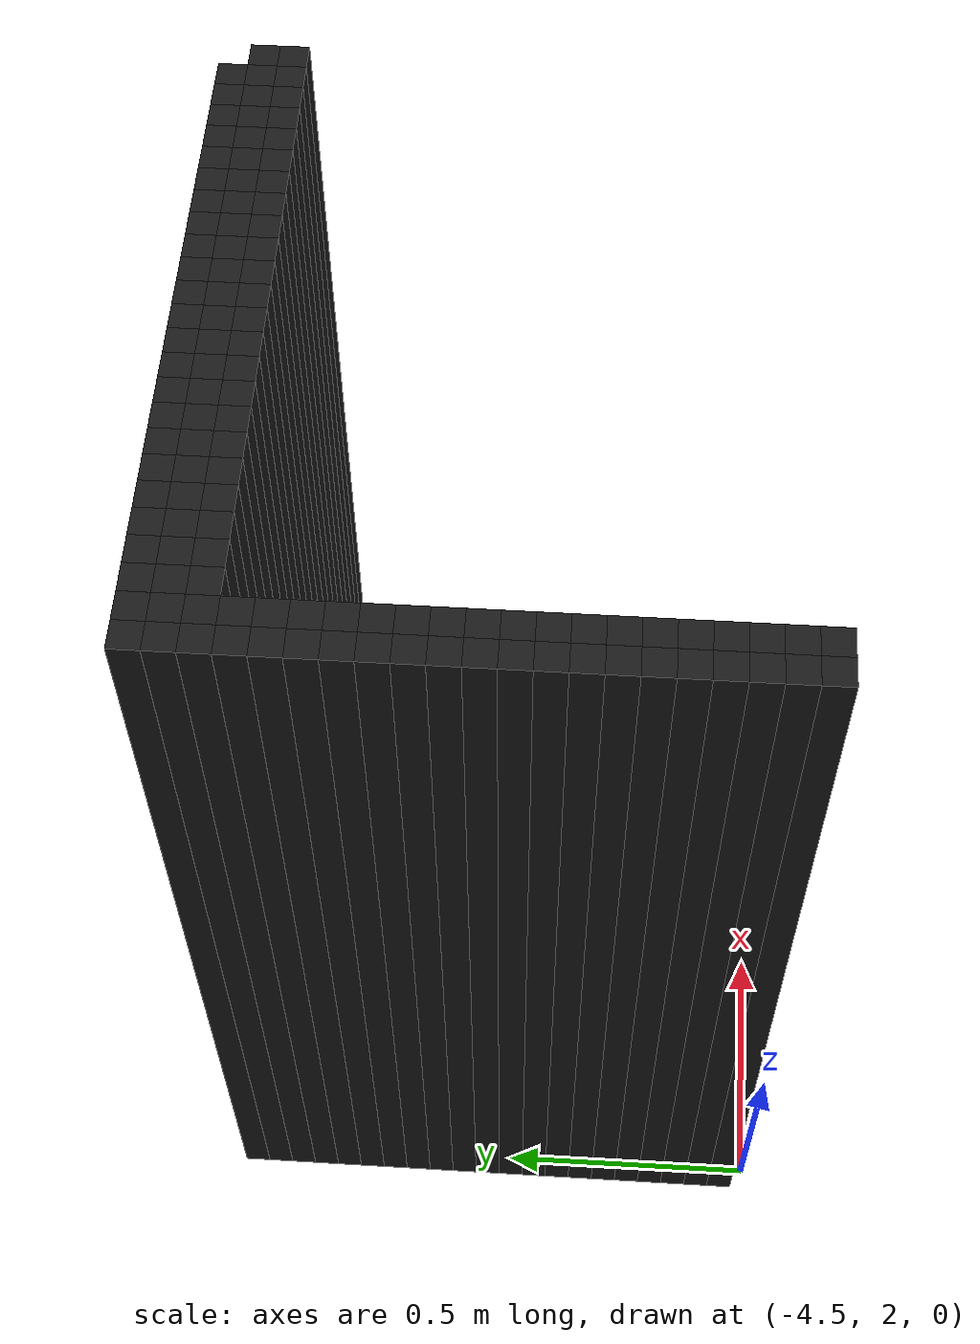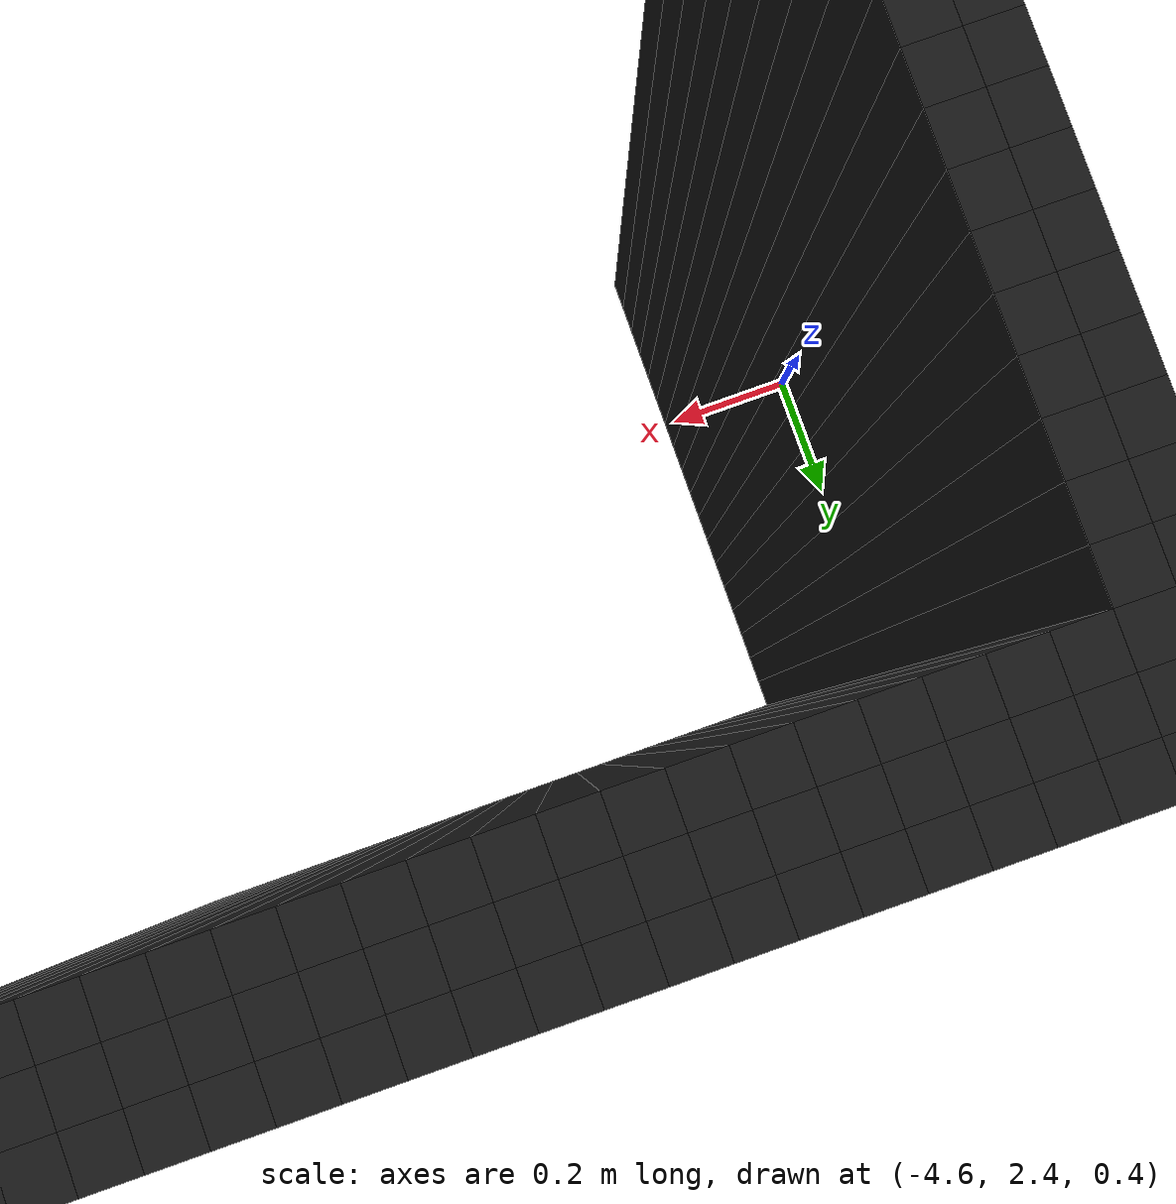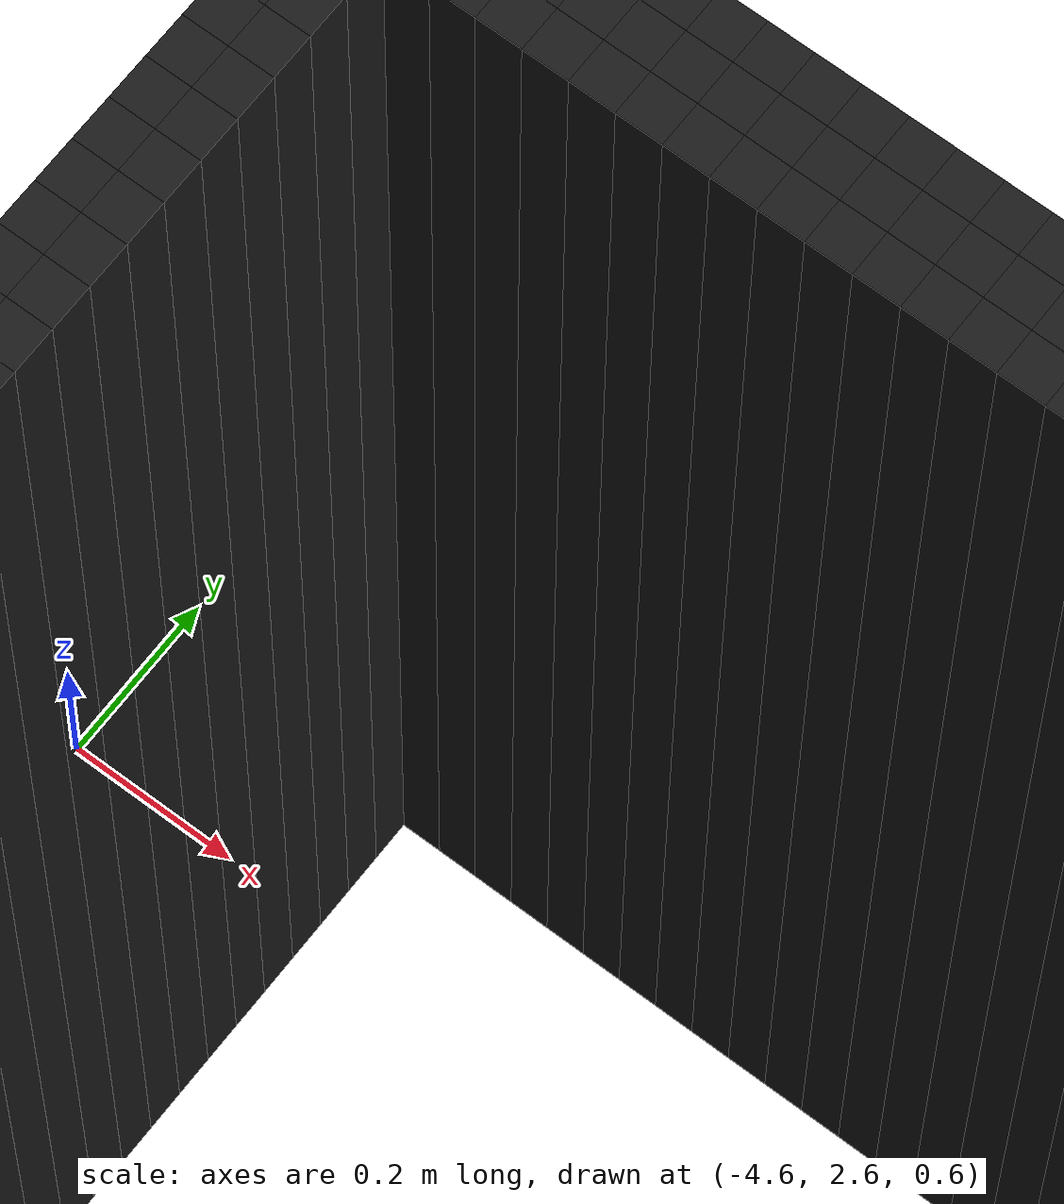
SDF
<sdf version="1.6">
 <model name="obstacle_0_106">
  <pose>-4.51 3.05 1.0 0 0 0</pose>
  <static>true</static>
  <link name="box_link">
   <collision name="box_collision"><geometry><box><size>0.05 0.05 2.0</size></box></geometry></collision>
   <visual name="box_visual">
    <geometry><box><size>0.05 0.05 2.0</size></box></geometry>
    <material><ambient>0 0 0 1</ambient><diffuse>0.1 0.1 0.1 1</diffuse></material>
   </visual>
  </link>
 </model>
 <model name="obstacle_1_106">
  <pose>-4.46 3.05 1.0 0 0 0</pose>
  <static>true</static>
  <link name="box_link">
   <collision name="box_collision"><geometry><box><size>0.05 0.05 2.0</size></box></geometry></collision>
   <visual name="box_visual">
    <geometry><box><size>0.05 0.05 2.0</size></box></geometry>
    <material><ambient>0 0 0 1</ambient><diffuse>0.1 0.1 0.1 1</diffuse></material>
   </visual>
  </link>
 </model>
 <model name="obstacle_2_106">
  <pose>-4.41 3.05 1.0 0 0 0</pose>
  <static>true</static>
  <link name="box_link">
   <collision name="box_collision"><geometry><box><size>0.05 0.05 2.0</size></box></geometry></collision>
   <visual name="box_visual">
    <geometry><box><size>0.05 0.05 2.0</size></box></geometry>
    <material><ambient>0 0 0 1</ambient><diffuse>0.1 0.1 0.1 1</diffuse></material>
   </visual>
  </link>
 </model>
 <model name="obstacle_3_106">
  <pose>-4.359999999999999 3.05 1.0 0 0 0</pose>
  <static>true</static>
  <link name="box_link">
   <collision name="box_collision"><geometry><box><size>0.05 0.05 2.0</size></box></geometry></collision>
   <visual name="box_visual">
    <geometry><box><size>0.05 0.05 2.0</size></box></geometry>
    <material><ambient>0 0 0 1</ambient><diffuse>0.1 0.1 0.1 1</diffuse></material>
   </visual>
  </link>
 </model>
 <model name="obstacle_4_106">
  <pose>-4.31 3.05 1.0 0 0 0</pose>
  <static>true</static>
  <link name="box_link">
   <collision name="box_collision"><geometry><box><size>0.05 0.05 2.0</size></box></geometry></collision>
   <visual name="box_visual">
    <geometry><box><size>0.05 0.05 2.0</size></box></geometry>
    <material><ambient>0 0 0 1</ambient><diffuse>0.1 0.1 0.1 1</diffuse></material>
   </visual>
  </link>
 </model>
 <model name="obstacle_5_106">
  <pose>-4.26 3.05 1.0 0 0 0</pose>
  <static>true</static>
  <link name="box_link">
   <collision name="box_collision"><geometry><box><size>0.05 0.05 2.0</size></box></geometry></collision>
   <visual name="box_visual">
    <geometry><box><size>0.05 0.05 2.0</size></box></geometry>
    <material><ambient>0 0 0 1</ambient><diffuse>0.1 0.1 0.1 1</diffuse></material>
   </visual>
  </link>
 </model>
 <model name="obstacle_6_106">
  <pose>-4.21 3.05 1.0 0 0 0</pose>
  <static>true</static>
  <link name="box_link">
   <collision name="box_collision"><geometry><box><size>0.05 0.05 2.0</size></box></geometry></collision>
   <visual name="box_visual">
    <geometry><box><size>0.05 0.05 2.0</size></box></geometry>
    <material><ambient>0 0 0 1</ambient><diffuse>0.1 0.1 0.1 1</diffuse></material>
   </visual>
  </link>
 </model>
 <model name="obstacle_7_106">
  <pose>-4.16 3.05 1.0 0 0 0</pose>
  <static>true</static>
  <link name="box_link">
   <collision name="box_collision"><geometry><box><size>0.05 0.05 2.0</size></box></geometry></collision>
   <visual name="box_visual">
    <geometry><box><size>0.05 0.05 2.0</size></box></geometry>
    <material><ambient>0 0 0 1</ambient><diffuse>0.1 0.1 0.1 1</diffuse></material>
   </visual>
  </link>
 </model>
 <model name="obstacle_8_106">
  <pose>-4.109999999999999 3.05 1.0 0 0 0</pose>
  <static>true</static>
  <link name="box_link">
   <collision name="box_collision"><geometry><box><size>0.05 0.05 2.0</size></box></geometry></collision>
   <visual name="box_visual">
    <geometry><box><size>0.05 0.05 2.0</size></box></geometry>
    <material><ambient>0 0 0 1</ambient><diffuse>0.1 0.1 0.1 1</diffuse></material>
   </visual>
  </link>
 </model>
 <model name="obstacle_9_106">
  <pose>-4.06 3.05 1.0 0 0 0</pose>
  <static>true</static>
  <link name="box_link">
   <collision name="box_collision"><geometry><box><size>0.05 0.05 2.0</size></box></geometry></collision>
   <visual name="box_visual">
    <geometry><box><size>0.05 0.05 2.0</size></box></geometry>
    <material><ambient>0 0 0 1</ambient><diffuse>0.1 0.1 0.1 1</diffuse></material>
   </visual>
  </link>
 </model>
 <model name="obstacle_10_106">
  <pose>-4.01 3.05 1.0 0 0 0</pose>
  <static>true</static>
  <link name="box_link">
   <collision name="box_collision"><geometry><box><size>0.05 0.05 2.0</size></box></geometry></collision>
   <visual name="box_visual">
    <geometry><box><size>0.05 0.05 2.0</size></box></geometry>
    <material><ambient>0 0 0 1</ambient><diffuse>0.1 0.1 0.1 1</diffuse></material>
   </visual>
  </link>
 </model>
 <model name="obstacle_11_106">
  <pose>-3.96 3.05 1.0 0 0 0</pose>
  <static>true</static>
  <link name="box_link">
   <collision name="box_collision"><geometry><box><size>0.05 0.05 2.0</size></box></geometry></collision>
   <visual name="box_visual">
    <geometry><box><size>0.05 0.05 2.0</size></box></geometry>
    <material><ambient>0 0 0 1</ambient><diffuse>0.1 0.1 0.1 1</diffuse></material>
   </visual>
  </link>
 </model>
 <model name="obstacle_12_106">
  <pose>-3.9099999999999997 3.05 1.0 0 0 0</pose>
  <static>true</static>
  <link name="box_link">
   <collision name="box_collision"><geometry><box><size>0.05 0.05 2.0</size></box></geometry></collision>
   <visual name="box_visual">
    <geometry><box><size>0.05 0.05 2.0</size></box></geometry>
    <material><ambient>0 0 0 1</ambient><diffuse>0.1 0.1 0.1 1</diffuse></material>
   </visual>
  </link>
 </model>
 <model name="obstacle_13_106">
  <pose>-3.86 3.05 1.0 0 0 0</pose>
  <static>true</static>
  <link name="box_link">
   <collision name="box_collision"><geometry><box><size>0.05 0.05 2.0</size></box></geometry></collision>
   <visual name="box_visual">
    <geometry><box><size>0.05 0.05 2.0</size></box></geometry>
    <material><ambient>0 0 0 1</ambient><diffuse>0.1 0.1 0.1 1</diffuse></material>
   </visual>
  </link>
 </model>
 <model name="obstacle_14_106">
  <pose>-3.8099999999999996 3.05 1.0 0 0 0</pose>
  <static>true</static>
  <link name="box_link">
   <collision name="box_collision"><geometry><box><size>0.05 0.05 2.0</size></box></geometry></collision>
   <visual name="box_visual">
    <geometry><box><size>0.05 0.05 2.0</size></box></geometry>
    <material><ambient>0 0 0 1</ambient><diffuse>0.1 0.1 0.1 1</diffuse></material>
   </visual>
  </link>
 </model>
 <model name="obstacle_15_106">
  <pose>-3.76 3.05 1.0 0 0 0</pose>
  <static>true</static>
  <link name="box_link">
   <collision name="box_collision"><geometry><box><size>0.05 0.05 2.0</size></box></geometry></collision>
   <visual name="box_visual">
    <geometry><box><size>0.05 0.05 2.0</size></box></geometry>
    <material><ambient>0 0 0 1</ambient><diffuse>0.1 0.1 0.1 1</diffuse></material>
   </visual>
  </link>
 </model>
 <model name="obstacle_16_106">
  <pose>-3.71 3.05 1.0 0 0 0</pose>
  <static>true</static>
  <link name="box_link">
   <collision name="box_collision"><geometry><box><size>0.05 0.05 2.0</size></box></geometry></collision>
   <visual name="box_visual">
    <geometry><box><size>0.05 0.05 2.0</size></box></geometry>
    <material><ambient>0 0 0 1</ambient><diffuse>0.1 0.1 0.1 1</diffuse></material>
   </visual>
  </link>
 </model>
 <model name="obstacle_17_106">
  <pose>-3.6599999999999997 3.05 1.0 0 0 0</pose>
  <static>true</static>
  <link name="box_link">
   <collision name="box_collision"><geometry><box><size>0.05 0.05 2.0</size></box></geometry></collision>
   <visual name="box_visual">
    <geometry><box><size>0.05 0.05 2.0</size></box></geometry>
    <material><ambient>0 0 0 1</ambient><diffuse>0.1 0.1 0.1 1</diffuse></material>
   </visual>
  </link>
 </model>
 <model name="obstacle_18_106">
  <pose>-3.61 3.05 1.0 0 0 0</pose>
  <static>true</static>
  <link name="box_link">
   <collision name="box_collision"><geometry><box><size>0.05 0.05 2.0</size></box></geometry></collision>
   <visual name="box_visual">
    <geometry><box><size>0.05 0.05 2.0</size></box></geometry>
    <material><ambient>0 0 0 1</ambient><diffuse>0.1 0.1 0.1 1</diffuse></material>
   </visual>
  </link>
 </model>
 <model name="obstacle_19_106">
  <pose>-3.5599999999999996 3.05 1.0 0 0 0</pose>
  <static>true</static>
  <link name="box_link">
   <collision name="box_collision"><geometry><box><size>0.05 0.05 2.0</size></box></geometry></collision>
   <visual name="box_visual">
    <geometry><box><size>0.05 0.05 2.0</size></box></geometry>
    <material><ambient>0 0 0 1</ambient><diffuse>0.1 0.1 0.1 1</diffuse></material>
   </visual>
  </link>
 </model>
 <model name="obstacle_20_106">
  <pose>-3.51 3.05 1.0 0 0 0</pose>
  <static>true</static>
  <link name="box_link">
   <collision name="box_collision"><geometry><box><size>0.05 0.05 2.0</size></box></geometry></collision>
   <visual name="box_visual">
    <geometry><box><size>0.05 0.05 2.0</size></box></geometry>
    <material><ambient>0 0 0 1</ambient><diffuse>0.1 0.1 0.1 1</diffuse></material>
   </visual>
  </link>
 </model>
 <model name="obstacle_21_106">
  <pose>-3.46 3.05 1.0 0 0 0</pose>
  <static>true</static>
  <link name="box_link">
   <collision name="box_collision"><geometry><box><size>0.05 0.05 2.0</size></box></geometry></collision>
   <visual name="box_visual">
    <geometry><box><size>0.05 0.05 2.0</size></box></geometry>
    <material><ambient>0 0 0 1</ambient><diffuse>0.1 0.1 0.1 1</diffuse></material>
   </visual>
  </link>
 </model>
 <model name="obstacle_22_106">
  <pose>-3.4099999999999997 3.05 1.0 0 0 0</pose>
  <static>true</static>
  <link name="box_link">
   <collision name="box_collision"><geometry><box><size>0.05 0.05 2.0</size></box></geometry></collision>
   <visual name="box_visual">
    <geometry><box><size>0.05 0.05 2.0</size></box></geometry>
    <material><ambient>0 0 0 1</ambient><diffuse>0.1 0.1 0.1 1</diffuse></material>
   </visual>
  </link>
 </model>
 <model name="obstacle_23_106">
  <pose>-3.3599999999999994 3.05 1.0 0 0 0</pose>
  <static>true</static>
  <link name="box_link">
   <collision name="box_collision"><geometry><box><size>0.05 0.05 2.0</size></box></geometry></collision>
   <visual name="box_visual">
    <geometry><box><size>0.05 0.05 2.0</size></box></geometry>
    <material><ambient>0 0 0 1</ambient><diffuse>0.1 0.1 0.1 1</diffuse></material>
   </visual>
  </link>
 </model>
 <model name="obstacle_0_107">
  <pose>-4.51 3.0 1.0 0 0 0</pose>
  <static>true</static>
  <link name="box_link">
   <collision name="box_collision"><geometry><box><size>0.05 0.05 2.0</size></box></geometry></collision>
   <visual name="box_visual">
    <geometry><box><size>0.05 0.05 2.0</size></box></geometry>
    <material><ambient>0 0 0 1</ambient><diffuse>0.1 0.1 0.1 1</diffuse></material>
   </visual>
  </link>
 </model>
 <model name="obstacle_1_107">
  <pose>-4.46 3.0 1.0 0 0 0</pose>
  <static>true</static>
  <link name="box_link">
   <collision name="box_collision"><geometry><box><size>0.05 0.05 2.0</size></box></geometry></collision>
   <visual name="box_visual">
    <geometry><box><size>0.05 0.05 2.0</size></box></geometry>
    <material><ambient>0 0 0 1</ambient><diffuse>0.1 0.1 0.1 1</diffuse></material>
   </visual>
  </link>
 </model>
 <model name="obstacle_2_107">
  <pose>-4.41 3.0 1.0 0 0 0</pose>
  <static>true</static>
  <link name="box_link">
   <collision name="box_collision"><geometry><box><size>0.05 0.05 2.0</size></box></geometry></collision>
   <visual name="box_visual">
    <geometry><box><size>0.05 0.05 2.0</size></box></geometry>
    <material><ambient>0 0 0 1</ambient><diffuse>0.1 0.1 0.1 1</diffuse></material>
   </visual>
  </link>
 </model>
 <model name="obstacle_3_107">
  <pose>-4.359999999999999 3.0 1.0 0 0 0</pose>
  <static>true</static>
  <link name="box_link">
   <collision name="box_collision"><geometry><box><size>0.05 0.05 2.0</size></box></geometry></collision>
   <visual name="box_visual">
    <geometry><box><size>0.05 0.05 2.0</size></box></geometry>
    <material><ambient>0 0 0 1</ambient><diffuse>0.1 0.1 0.1 1</diffuse></material>
   </visual>
  </link>
 </model>
 <model name="obstacle_4_107">
  <pose>-4.31 3.0 1.0 0 0 0</pose>
  <static>true</static>
  <link name="box_link">
   <collision name="box_collision"><geometry><box><size>0.05 0.05 2.0</size></box></geometry></collision>
   <visual name="box_visual">
    <geometry><box><size>0.05 0.05 2.0</size></box></geometry>
    <material><ambient>0 0 0 1</ambient><diffuse>0.1 0.1 0.1 1</diffuse></material>
   </visual>
  </link>
 </model>
 <model name="obstacle_5_107">
  <pose>-4.26 3.0 1.0 0 0 0</pose>
  <static>true</static>
  <link name="box_link">
   <collision name="box_collision"><geometry><box><size>0.05 0.05 2.0</size></box></geometry></collision>
   <visual name="box_visual">
    <geometry><box><size>0.05 0.05 2.0</size></box></geometry>
    <material><ambient>0 0 0 1</ambient><diffuse>0.1 0.1 0.1 1</diffuse></material>
   </visual>
  </link>
 </model>
 <model name="obstacle_6_107">
  <pose>-4.21 3.0 1.0 0 0 0</pose>
  <static>true</static>
  <link name="box_link">
   <collision name="box_collision"><geometry><box><size>0.05 0.05 2.0</size></box></geometry></collision>
   <visual name="box_visual">
    <geometry><box><size>0.05 0.05 2.0</size></box></geometry>
    <material><ambient>0 0 0 1</ambient><diffuse>0.1 0.1 0.1 1</diffuse></material>
   </visual>
  </link>
 </model>
 <model name="obstacle_7_107">
  <pose>-4.16 3.0 1.0 0 0 0</pose>
  <static>true</static>
  <link name="box_link">
   <collision name="box_collision"><geometry><box><size>0.05 0.05 2.0</size></box></geometry></collision>
   <visual name="box_visual">
    <geometry><box><size>0.05 0.05 2.0</size></box></geometry>
    <material><ambient>0 0 0 1</ambient><diffuse>0.1 0.1 0.1 1</diffuse></material>
   </visual>
  </link>
 </model>
 <model name="obstacle_8_107">
  <pose>-4.109999999999999 3.0 1.0 0 0 0</pose>
  <static>true</static>
  <link name="box_link">
   <collision name="box_collision"><geometry><box><size>0.05 0.05 2.0</size></box></geometry></collision>
   <visual name="box_visual">
    <geometry><box><size>0.05 0.05 2.0</size></box></geometry>
    <material><ambient>0 0 0 1</ambient><diffuse>0.1 0.1 0.1 1</diffuse></material>
   </visual>
  </link>
 </model>
 <model name="obstacle_9_107">
  <pose>-4.06 3.0 1.0 0 0 0</pose>
  <static>true</static>
  <link name="box_link">
   <collision name="box_collision"><geometry><box><size>0.05 0.05 2.0</size></box></geometry></collision>
   <visual name="box_visual">
    <geometry><box><size>0.05 0.05 2.0</size></box></geometry>
    <material><ambient>0 0 0 1</ambient><diffuse>0.1 0.1 0.1 1</diffuse></material>
   </visual>
  </link>
 </model>
 <model name="obstacle_10_107">
  <pose>-4.01 3.0 1.0 0 0 0</pose>
  <static>true</static>
  <link name="box_link">
   <collision name="box_collision"><geometry><box><size>0.05 0.05 2.0</size></box></geometry></collision>
   <visual name="box_visual">
    <geometry><box><size>0.05 0.05 2.0</size></box></geometry>
    <material><ambient>0 0 0 1</ambient><diffuse>0.1 0.1 0.1 1</diffuse></material>
   </visual>
  </link>
 </model>
 <model name="obstacle_11_107">
  <pose>-3.96 3.0 1.0 0 0 0</pose>
  <static>true</static>
  <link name="box_link">
   <collision name="box_collision"><geometry><box><size>0.05 0.05 2.0</size></box></geometry></collision>
   <visual name="box_visual">
    <geometry><box><size>0.05 0.05 2.0</size></box></geometry>
    <material><ambient>0 0 0 1</ambient><diffuse>0.1 0.1 0.1 1</diffuse></material>
   </visual>
  </link>
 </model>
 <model name="obstacle_12_107">
  <pose>-3.9099999999999997 3.0 1.0 0 0 0</pose>
  <static>true</static>
  <link name="box_link">
   <collision name="box_collision"><geometry><box><size>0.05 0.05 2.0</size></box></geometry></collision>
   <visual name="box_visual">
    <geometry><box><size>0.05 0.05 2.0</size></box></geometry>
    <material><ambient>0 0 0 1</ambient><diffuse>0.1 0.1 0.1 1</diffuse></material>
   </visual>
  </link>
 </model>
 <model name="obstacle_13_107">
  <pose>-3.86 3.0 1.0 0 0 0</pose>
  <static>true</static>
  <link name="box_link">
   <collision name="box_collision"><geometry><box><size>0.05 0.05 2.0</size></box></geometry></collision>
   <visual name="box_visual">
    <geometry><box><size>0.05 0.05 2.0</size></box></geometry>
    <material><ambient>0 0 0 1</ambient><diffuse>0.1 0.1 0.1 1</diffuse></material>
   </visual>
  </link>
 </model>
 <model name="obstacle_14_107">
  <pose>-3.8099999999999996 3.0 1.0 0 0 0</pose>
  <static>true</static>
  <link name="box_link">
   <collision name="box_collision"><geometry><box><size>0.05 0.05 2.0</size></box></geometry></collision>
   <visual name="box_visual">
    <geometry><box><size>0.05 0.05 2.0</size></box></geometry>
    <material><ambient>0 0 0 1</ambient><diffuse>0.1 0.1 0.1 1</diffuse></material>
   </visual>
  </link>
 </model>
 <model name="obstacle_15_107">
  <pose>-3.76 3.0 1.0 0 0 0</pose>
  <static>true</static>
  <link name="box_link">
   <collision name="box_collision"><geometry><box><size>0.05 0.05 2.0</size></box></geometry></collision>
   <visual name="box_visual">
    <geometry><box><size>0.05 0.05 2.0</size></box></geometry>
    <material><ambient>0 0 0 1</ambient><diffuse>0.1 0.1 0.1 1</diffuse></material>
   </visual>
  </link>
 </model>
 <model name="obstacle_16_107">
  <pose>-3.71 3.0 1.0 0 0 0</pose>
  <static>true</static>
  <link name="box_link">
   <collision name="box_collision"><geometry><box><size>0.05 0.05 2.0</size></box></geometry></collision>
   <visual name="box_visual">
    <geometry><box><size>0.05 0.05 2.0</size></box></geometry>
    <material><ambient>0 0 0 1</ambient><diffuse>0.1 0.1 0.1 1</diffuse></material>
   </visual>
  </link>
 </model>
 <model name="obstacle_17_107">
  <pose>-3.6599999999999997 3.0 1.0 0 0 0</pose>
  <static>true</static>
  <link name="box_link">
   <collision name="box_collision"><geometry><box><size>0.05 0.05 2.0</size></box></geometry></collision>
   <visual name="box_visual">
    <geometry><box><size>0.05 0.05 2.0</size></box></geometry>
    <material><ambient>0 0 0 1</ambient><diffuse>0.1 0.1 0.1 1</diffuse></material>
   </visual>
  </link>
 </model>
 <model name="obstacle_18_107">
  <pose>-3.61 3.0 1.0 0 0 0</pose>
  <static>true</static>
  <link name="box_link">
   <collision name="box_collision"><geometry><box><size>0.05 0.05 2.0</size></box></geometry></collision>
   <visual name="box_visual">
    <geometry><box><size>0.05 0.05 2.0</size></box></geometry>
    <material><ambient>0 0 0 1</ambient><diffuse>0.1 0.1 0.1 1</diffuse></material>
   </visual>
  </link>
 </model>
 <model name="obstacle_19_107">
  <pose>-3.5599999999999996 3.0 1.0 0 0 0</pose>
  <static>true</static>
  <link name="box_link">
   <collision name="box_collision"><geometry><box><size>0.05 0.05 2.0</size></box></geometry></collision>
   <visual name="box_visual">
    <geometry><box><size>0.05 0.05 2.0</size></box></geometry>
    <material><ambient>0 0 0 1</ambient><diffuse>0.1 0.1 0.1 1</diffuse></material>
   </visual>
  </link>
 </model>
 <model name="obstacle_20_107">
  <pose>-3.51 3.0 1.0 0 0 0</pose>
  <static>true</static>
  <link name="box_link">
   <collision name="box_collision"><geometry><box><size>0.05 0.05 2.0</size></box></geometry></collision>
   <visual name="box_visual">
    <geometry><box><size>0.05 0.05 2.0</size></box></geometry>
    <material><ambient>0 0 0 1</ambient><diffuse>0.1 0.1 0.1 1</diffuse></material>
   </visual>
  </link>
 </model>
 <model name="obstacle_21_107">
  <pose>-3.46 3.0 1.0 0 0 0</pose>
  <static>true</static>
  <link name="box_link">
   <collision name="box_collision"><geometry><box><size>0.05 0.05 2.0</size></box></geometry></collision>
   <visual name="box_visual">
    <geometry><box><size>0.05 0.05 2.0</size></box></geometry>
    <material><ambient>0 0 0 1</ambient><diffuse>0.1 0.1 0.1 1</diffuse></material>
   </visual>
  </link>
 </model>
 <model name="obstacle_22_107">
  <pose>-3.4099999999999997 3.0 1.0 0 0 0</pose>
  <static>true</static>
  <link name="box_link">
   <collision name="box_collision"><geometry><box><size>0.05 0.05 2.0</size></box></geometry></collision>
   <visual name="box_visual">
    <geometry><box><size>0.05 0.05 2.0</size></box></geometry>
    <material><ambient>0 0 0 1</ambient><diffuse>0.1 0.1 0.1 1</diffuse></material>
   </visual>
  </link>
 </model>
 <model name="obstacle_23_107">
  <pose>-3.3599999999999994 3.0 1.0 0 0 0</pose>
  <static>true</static>
  <link name="box_link">
   <collision name="box_collision"><geometry><box><size>0.05 0.05 2.0</size></box></geometry></collision>
   <visual name="box_visual">
    <geometry><box><size>0.05 0.05 2.0</size></box></geometry>
    <material><ambient>0 0 0 1</ambient><diffuse>0.1 0.1 0.1 1</diffuse></material>
   </visual>
  </link>
 </model>
 <model name="obstacle_24_107">
  <pose>-3.3099999999999996 3.0 1.0 0 0 0</pose>
  <static>true</static>
  <link name="box_link">
   <collision name="box_collision"><geometry><box><size>0.05 0.05 2.0</size></box></geometry></collision>
   <visual name="box_visual">
    <geometry><box><size>0.05 0.05 2.0</size></box></geometry>
    <material><ambient>0 0 0 1</ambient><diffuse>0.1 0.1 0.1 1</diffuse></material>
   </visual>
  </link>
 </model>
 <model name="obstacle_0_108">
  <pose>-4.51 2.95 1.0 0 0 0</pose>
  <static>true</static>
  <link name="box_link">
   <collision name="box_collision"><geometry><box><size>0.05 0.05 2.0</size></box></geometry></collision>
   <visual name="box_visual">
    <geometry><box><size>0.05 0.05 2.0</size></box></geometry>
    <material><ambient>0 0 0 1</ambient><diffuse>0.1 0.1 0.1 1</diffuse></material>
   </visual>
  </link>
 </model>
 <model name="obstacle_1_108">
  <pose>-4.46 2.95 1.0 0 0 0</pose>
  <static>true</static>
  <link name="box_link">
   <collision name="box_collision"><geometry><box><size>0.05 0.05 2.0</size></box></geometry></collision>
   <visual name="box_visual">
    <geometry><box><size>0.05 0.05 2.0</size></box></geometry>
    <material><ambient>0 0 0 1</ambient><diffuse>0.1 0.1 0.1 1</diffuse></material>
   </visual>
  </link>
 </model>
 <model name="obstacle_2_108">
  <pose>-4.41 2.95 1.0 0 0 0</pose>
  <static>true</static>
  <link name="box_link">
   <collision name="box_collision"><geometry><box><size>0.05 0.05 2.0</size></box></geometry></collision>
   <visual name="box_visual">
    <geometry><box><size>0.05 0.05 2.0</size></box></geometry>
    <material><ambient>0 0 0 1</ambient><diffuse>0.1 0.1 0.1 1</diffuse></material>
   </visual>
  </link>
 </model>
 <model name="obstacle_3_108">
  <pose>-4.359999999999999 2.95 1.0 0 0 0</pose>
  <static>true</static>
  <link name="box_link">
   <collision name="box_collision"><geometry><box><size>0.05 0.05 2.0</size></box></geometry></collision>
   <visual name="box_visual">
    <geometry><box><size>0.05 0.05 2.0</size></box></geometry>
    <material><ambient>0 0 0 1</ambient><diffuse>0.1 0.1 0.1 1</diffuse></material>
   </visual>
  </link>
 </model>
 <model name="obstacle_4_108">
  <pose>-4.31 2.95 1.0 0 0 0</pose>
  <static>true</static>
  <link name="box_link">
   <collision name="box_collision"><geometry><box><size>0.05 0.05 2.0</size></box></geometry></collision>
   <visual name="box_visual">
    <geometry><box><size>0.05 0.05 2.0</size></box></geometry>
    <material><ambient>0 0 0 1</ambient><diffuse>0.1 0.1 0.1 1</diffuse></material>
   </visual>
  </link>
 </model>
 <model name="obstacle_5_108">
  <pose>-4.26 2.95 1.0 0 0 0</pose>
  <static>true</static>
  <link name="box_link">
   <collision name="box_collision"><geometry><box><size>0.05 0.05 2.0</size></box></geometry></collision>
   <visual name="box_visual">
    <geometry><box><size>0.05 0.05 2.0</size></box></geometry>
    <material><ambient>0 0 0 1</ambient><diffuse>0.1 0.1 0.1 1</diffuse></material>
   </visual>
  </link>
 </model>
 <model name="obstacle_6_108">
  <pose>-4.21 2.95 1.0 0 0 0</pose>
  <static>true</static>
  <link name="box_link">
   <collision name="box_collision"><geometry><box><size>0.05 0.05 2.0</size></box></geometry></collision>
   <visual name="box_visual">
    <geometry><box><size>0.05 0.05 2.0</size></box></geometry>
    <material><ambient>0 0 0 1</ambient><diffuse>0.1 0.1 0.1 1</diffuse></material>
   </visual>
  </link>
 </model>
 <model name="obstacle_7_108">
  <pose>-4.16 2.95 1.0 0 0 0</pose>
  <static>true</static>
  <link name="box_link">
   <collision name="box_collision"><geometry><box><size>0.05 0.05 2.0</size></box></geometry></collision>
   <visual name="box_visual">
    <geometry><box><size>0.05 0.05 2.0</size></box></geometry>
    <material><ambient>0 0 0 1</ambient><diffuse>0.1 0.1 0.1 1</diffuse></material>
   </visual>
  </link>
 </model>
 <model name="obstacle_8_108">
  <pose>-4.109999999999999 2.95 1.0 0 0 0</pose>
  <static>true</static>
  <link name="box_link">
   <collision name="box_collision"><geometry><box><size>0.05 0.05 2.0</size></box></geometry></collision>
   <visual name="box_visual">
    <geometry><box><size>0.05 0.05 2.0</size></box></geometry>
    <material><ambient>0 0 0 1</ambient><diffuse>0.1 0.1 0.1 1</diffuse></material>
   </visual>
  </link>
 </model>
 <model name="obstacle_9_108">
  <pose>-4.06 2.95 1.0 0 0 0</pose>
  <static>true</static>
  <link name="box_link">
   <collision name="box_collision"><geometry><box><size>0.05 0.05 2.0</size></box></geometry></collision>
   <visual name="box_visual">
    <geometry><box><size>0.05 0.05 2.0</size></box></geometry>
    <material><ambient>0 0 0 1</ambient><diffuse>0.1 0.1 0.1 1</diffuse></material>
   </visual>
  </link>
 </model>
 <model name="obstacle_10_108">
  <pose>-4.01 2.95 1.0 0 0 0</pose>
  <static>true</static>
  <link name="box_link">
   <collision name="box_collision"><geometry><box><size>0.05 0.05 2.0</size></box></geometry></collision>
   <visual name="box_visual">
    <geometry><box><size>0.05 0.05 2.0</size></box></geometry>
    <material><ambient>0 0 0 1</ambient><diffuse>0.1 0.1 0.1 1</diffuse></material>
   </visual>
  </link>
 </model>
 <model name="obstacle_11_108">
  <pose>-3.96 2.95 1.0 0 0 0</pose>
  <static>true</static>
  <link name="box_link">
   <collision name="box_collision"><geometry><box><size>0.05 0.05 2.0</size></box></geometry></collision>
   <visual name="box_visual">
    <geometry><box><size>0.05 0.05 2.0</size></box></geometry>
    <material><ambient>0 0 0 1</ambient><diffuse>0.1 0.1 0.1 1</diffuse></material>
   </visual>
  </link>
 </model>
 <model name="obstacle_12_108">
  <pose>-3.9099999999999997 2.95 1.0 0 0 0</pose>
  <static>true</static>
  <link name="box_link">
   <collision name="box_collision"><geometry><box><size>0.05 0.05 2.0</size></box></geometry></collision>
   <visual name="box_visual">
    <geometry><box><size>0.05 0.05 2.0</size></box></geometry>
    <material><ambient>0 0 0 1</ambient><diffuse>0.1 0.1 0.1 1</diffuse></material>
   </visual>
  </link>
 </model>
 <model name="obstacle_13_108">
  <pose>-3.86 2.95 1.0 0 0 0</pose>
  <static>true</static>
  <link name="box_link">
   <collision name="box_collision"><geometry><box><size>0.05 0.05 2.0</size></box></geometry></collision>
   <visual name="box_visual">
    <geometry><box><size>0.05 0.05 2.0</size></box></geometry>
    <material><ambient>0 0 0 1</ambient><diffuse>0.1 0.1 0.1 1</diffuse></material>
   </visual>
  </link>
 </model>
 <model name="obstacle_14_108">
  <pose>-3.8099999999999996 2.95 1.0 0 0 0</pose>
  <static>true</static>
  <link name="box_link">
   <collision name="box_collision"><geometry><box><size>0.05 0.05 2.0</size></box></geometry></collision>
   <visual name="box_visual">
    <geometry><box><size>0.05 0.05 2.0</size></box></geometry>
    <material><ambient>0 0 0 1</ambient><diffuse>0.1 0.1 0.1 1</diffuse></material>
   </visual>
  </link>
 </model>
 <model name="obstacle_15_108">
  <pose>-3.76 2.95 1.0 0 0 0</pose>
  <static>true</static>
  <link name="box_link">
   <collision name="box_collision"><geometry><box><size>0.05 0.05 2.0</size></box></geometry></collision>
   <visual name="box_visual">
    <geometry><box><size>0.05 0.05 2.0</size></box></geometry>
    <material><ambient>0 0 0 1</ambient><diffuse>0.1 0.1 0.1 1</diffuse></material>
   </visual>
  </link>
 </model>
 <model name="obstacle_16_108">
  <pose>-3.71 2.95 1.0 0 0 0</pose>
  <static>true</static>
  <link name="box_link">
   <collision name="box_collision"><geometry><box><size>0.05 0.05 2.0</size></box></geometry></collision>
   <visual name="box_visual">
    <geometry><box><size>0.05 0.05 2.0</size></box></geometry>
    <material><ambient>0 0 0 1</ambient><diffuse>0.1 0.1 0.1 1</diffuse></material>
   </visual>
  </link>
 </model>
 <model name="obstacle_17_108">
  <pose>-3.6599999999999997 2.95 1.0 0 0 0</pose>
  <static>true</static>
  <link name="box_link">
   <collision name="box_collision"><geometry><box><size>0.05 0.05 2.0</size></box></geometry></collision>
   <visual name="box_visual">
    <geometry><box><size>0.05 0.05 2.0</size></box></geometry>
    <material><ambient>0 0 0 1</ambient><diffuse>0.1 0.1 0.1 1</diffuse></material>
   </visual>
  </link>
 </model>
 <model name="obstacle_18_108">
  <pose>-3.61 2.95 1.0 0 0 0</pose>
  <static>true</static>
  <link name="box_link">
   <collision name="box_collision"><geometry><box><size>0.05 0.05 2.0</size></box></geometry></collision>
   <visual name="box_visual">
    <geometry><box><size>0.05 0.05 2.0</size></box></geometry>
    <material><ambient>0 0 0 1</ambient><diffuse>0.1 0.1 0.1 1</diffuse></material>
   </visual>
  </link>
 </model>
 <model name="obstacle_19_108">
  <pose>-3.5599999999999996 2.95 1.0 0 0 0</pose>
  <static>true</static>
  <link name="box_link">
   <collision name="box_collision"><geometry><box><size>0.05 0.05 2.0</size></box></geometry></collision>
   <visual name="box_visual">
    <geometry><box><size>0.05 0.05 2.0</size></box></geometry>
    <material><ambient>0 0 0 1</ambient><diffuse>0.1 0.1 0.1 1</diffuse></material>
   </visual>
  </link>
 </model>
 <model name="obstacle_20_108">
  <pose>-3.51 2.95 1.0 0 0 0</pose>
  <static>true</static>
  <link name="box_link">
   <collision name="box_collision"><geometry><box><size>0.05 0.05 2.0</size></box></geometry></collision>
   <visual name="box_visual">
    <geometry><box><size>0.05 0.05 2.0</size></box></geometry>
    <material><ambient>0 0 0 1</ambient><diffuse>0.1 0.1 0.1 1</diffuse></material>
   </visual>
  </link>
 </model>
 <model name="obstacle_21_108">
  <pose>-3.46 2.95 1.0 0 0 0</pose>
  <static>true</static>
  <link name="box_link">
   <collision name="box_collision"><geometry><box><size>0.05 0.05 2.0</size></box></geometry></collision>
   <visual name="box_visual">
    <geometry><box><size>0.05 0.05 2.0</size></box></geometry>
    <material><ambient>0 0 0 1</ambient><diffuse>0.1 0.1 0.1 1</diffuse></material>
   </visual>
  </link>
 </model>
 <model name="obstacle_22_108">
  <pose>-3.4099999999999997 2.95 1.0 0 0 0</pose>
  <static>true</static>
  <link name="box_link">
   <collision name="box_collision"><geometry><box><size>0.05 0.05 2.0</size></box></geometry></collision>
   <visual name="box_visual">
    <geometry><box><size>0.05 0.05 2.0</size></box></geometry>
    <material><ambient>0 0 0 1</ambient><diffuse>0.1 0.1 0.1 1</diffuse></material>
   </visual>
  </link>
 </model>
 <model name="obstacle_23_108">
  <pose>-3.3599999999999994 2.95 1.0 0 0 0</pose>
  <static>true</static>
  <link name="box_link">
   <collision name="box_collision"><geometry><box><size>0.05 0.05 2.0</size></box></geometry></collision>
   <visual name="box_visual">
    <geometry><box><size>0.05 0.05 2.0</size></box></geometry>
    <material><ambient>0 0 0 1</ambient><diffuse>0.1 0.1 0.1 1</diffuse></material>
   </visual>
  </link>
 </model>
 <model name="obstacle_24_108">
  <pose>-3.3099999999999996 2.95 1.0 0 0 0</pose>
  <static>true</static>
  <link name="box_link">
   <collision name="box_collision"><geometry><box><size>0.05 0.05 2.0</size></box></geometry></collision>
   <visual name="box_visual">
    <geometry><box><size>0.05 0.05 2.0</size></box></geometry>
    <material><ambient>0 0 0 1</ambient><diffuse>0.1 0.1 0.1 1</diffuse></material>
   </visual>
  </link>
 </model>
 <model name="obstacle_0_109">
  <pose>-4.51 2.9000000000000004 1.0 0 0 0</pose>
  <static>true</static>
  <link name="box_link">
   <collision name="box_collision"><geometry><box><size>0.05 0.05 2.0</size></box></geometry></collision>
   <visual name="box_visual">
    <geometry><box><size>0.05 0.05 2.0</size></box></geometry>
    <material><ambient>0 0 0 1</ambient><diffuse>0.1 0.1 0.1 1</diffuse></material>
   </visual>
  </link>
 </model>
 <model name="obstacle_1_109">
  <pose>-4.46 2.9000000000000004 1.0 0 0 0</pose>
  <static>true</static>
  <link name="box_link">
   <collision name="box_collision"><geometry><box><size>0.05 0.05 2.0</size></box></geometry></collision>
   <visual name="box_visual">
    <geometry><box><size>0.05 0.05 2.0</size></box></geometry>
    <material><ambient>0 0 0 1</ambient><diffuse>0.1 0.1 0.1 1</diffuse></material>
   </visual>
  </link>
 </model>
 <model name="obstacle_0_110">
  <pose>-4.51 2.8500000000000005 1.0 0 0 0</pose>
  <static>true</static>
  <link name="box_link">
   <collision name="box_collision"><geometry><box><size>0.05 0.05 2.0</size></box></geometry></collision>
   <visual name="box_visual">
    <geometry><box><size>0.05 0.05 2.0</size></box></geometry>
    <material><ambient>0 0 0 1</ambient><diffuse>0.1 0.1 0.1 1</diffuse></material>
   </visual>
  </link>
 </model>
 <model name="obstacle_1_110">
  <pose>-4.46 2.8500000000000005 1.0 0 0 0</pose>
  <static>true</static>
  <link name="box_link">
   <collision name="box_collision"><geometry><box><size>0.05 0.05 2.0</size></box></geometry></collision>
   <visual name="box_visual">
    <geometry><box><size>0.05 0.05 2.0</size></box></geometry>
    <material><ambient>0 0 0 1</ambient><diffuse>0.1 0.1 0.1 1</diffuse></material>
   </visual>
  </link>
 </model>
 <model name="obstacle_0_111">
  <pose>-4.51 2.8 1.0 0 0 0</pose>
  <static>true</static>
  <link name="box_link">
   <collision name="box_collision"><geometry><box><size>0.05 0.05 2.0</size></box></geometry></collision>
   <visual name="box_visual">
    <geometry><box><size>0.05 0.05 2.0</size></box></geometry>
    <material><ambient>0 0 0 1</ambient><diffuse>0.1 0.1 0.1 1</diffuse></material>
   </visual>
  </link>
 </model>
 <model name="obstacle_1_111">
  <pose>-4.46 2.8 1.0 0 0 0</pose>
  <static>true</static>
  <link name="box_link">
   <collision name="box_collision"><geometry><box><size>0.05 0.05 2.0</size></box></geometry></collision>
   <visual name="box_visual">
    <geometry><box><size>0.05 0.05 2.0</size></box></geometry>
    <material><ambient>0 0 0 1</ambient><diffuse>0.1 0.1 0.1 1</diffuse></material>
   </visual>
  </link>
 </model>
 <model name="obstacle_0_112">
  <pose>-4.51 2.75 1.0 0 0 0</pose>
  <static>true</static>
  <link name="box_link">
   <collision name="box_collision"><geometry><box><size>0.05 0.05 2.0</size></box></geometry></collision>
   <visual name="box_visual">
    <geometry><box><size>0.05 0.05 2.0</size></box></geometry>
    <material><ambient>0 0 0 1</ambient><diffuse>0.1 0.1 0.1 1</diffuse></material>
   </visual>
  </link>
 </model>
 <model name="obstacle_1_112">
  <pose>-4.46 2.75 1.0 0 0 0</pose>
  <static>true</static>
  <link name="box_link">
   <collision name="box_collision"><geometry><box><size>0.05 0.05 2.0</size></box></geometry></collision>
   <visual name="box_visual">
    <geometry><box><size>0.05 0.05 2.0</size></box></geometry>
    <material><ambient>0 0 0 1</ambient><diffuse>0.1 0.1 0.1 1</diffuse></material>
   </visual>
  </link>
 </model>
 <model name="obstacle_0_113">
  <pose>-4.51 2.7 1.0 0 0 0</pose>
  <static>true</static>
  <link name="box_link">
   <collision name="box_collision"><geometry><box><size>0.05 0.05 2.0</size></box></geometry></collision>
   <visual name="box_visual">
    <geometry><box><size>0.05 0.05 2.0</size></box></geometry>
    <material><ambient>0 0 0 1</ambient><diffuse>0.1 0.1 0.1 1</diffuse></material>
   </visual>
  </link>
 </model>
 <model name="obstacle_1_113">
  <pose>-4.46 2.7 1.0 0 0 0</pose>
  <static>true</static>
  <link name="box_link">
   <collision name="box_collision"><geometry><box><size>0.05 0.05 2.0</size></box></geometry></collision>
   <visual name="box_visual">
    <geometry><box><size>0.05 0.05 2.0</size></box></geometry>
    <material><ambient>0 0 0 1</ambient><diffuse>0.1 0.1 0.1 1</diffuse></material>
   </visual>
  </link>
 </model>
 <model name="obstacle_0_114">
  <pose>-4.51 2.6500000000000004 1.0 0 0 0</pose>
  <static>true</static>
  <link name="box_link">
   <collision name="box_collision"><geometry><box><size>0.05 0.05 2.0</size></box></geometry></collision>
   <visual name="box_visual">
    <geometry><box><size>0.05 0.05 2.0</size></box></geometry>
    <material><ambient>0 0 0 1</ambient><diffuse>0.1 0.1 0.1 1</diffuse></material>
   </visual>
  </link>
 </model>
 <model name="obstacle_1_114">
  <pose>-4.46 2.6500000000000004 1.0 0 0 0</pose>
  <static>true</static>
  <link name="box_link">
   <collision name="box_collision"><geometry><box><size>0.05 0.05 2.0</size></box></geometry></collision>
   <visual name="box_visual">
    <geometry><box><size>0.05 0.05 2.0</size></box></geometry>
    <material><ambient>0 0 0 1</ambient><diffuse>0.1 0.1 0.1 1</diffuse></material>
   </visual>
  </link>
 </model>
 <model name="obstacle_0_115">
  <pose>-4.51 2.6000000000000005 1.0 0 0 0</pose>
  <static>true</static>
  <link name="box_link">
   <collision name="box_collision"><geometry><box><size>0.05 0.05 2.0</size></box></geometry></collision>
   <visual name="box_visual">
    <geometry><box><size>0.05 0.05 2.0</size></box></geometry>
    <material><ambient>0 0 0 1</ambient><diffuse>0.1 0.1 0.1 1</diffuse></material>
   </visual>
  </link>
 </model>
 <model name="obstacle_1_115">
  <pose>-4.46 2.6000000000000005 1.0 0 0 0</pose>
  <static>true</static>
  <link name="box_link">
   <collision name="box_collision"><geometry><box><size>0.05 0.05 2.0</size></box></geometry></collision>
   <visual name="box_visual">
    <geometry><box><size>0.05 0.05 2.0</size></box></geometry>
    <material><ambient>0 0 0 1</ambient><diffuse>0.1 0.1 0.1 1</diffuse></material>
   </visual>
  </link>
 </model>
 <model name="obstacle_0_116">
  <pose>-4.51 2.55 1.0 0 0 0</pose>
  <static>true</static>
  <link name="box_link">
   <collision name="box_collision"><geometry><box><size>0.05 0.05 2.0</size></box></geometry></collision>
   <visual name="box_visual">
    <geometry><box><size>0.05 0.05 2.0</size></box></geometry>
    <material><ambient>0 0 0 1</ambient><diffuse>0.1 0.1 0.1 1</diffuse></material>
   </visual>
  </link>
 </model>
 <model name="obstacle_1_116">
  <pose>-4.46 2.55 1.0 0 0 0</pose>
  <static>true</static>
  <link name="box_link">
   <collision name="box_collision"><geometry><box><size>0.05 0.05 2.0</size></box></geometry></collision>
   <visual name="box_visual">
    <geometry><box><size>0.05 0.05 2.0</size></box></geometry>
    <material><ambient>0 0 0 1</ambient><diffuse>0.1 0.1 0.1 1</diffuse></material>
   </visual>
  </link>
 </model>
 <model name="obstacle_0_117">
  <pose>-4.51 2.5 1.0 0 0 0</pose>
  <static>true</static>
  <link name="box_link">
   <collision name="box_collision"><geometry><box><size>0.05 0.05 2.0</size></box></geometry></collision>
   <visual name="box_visual">
    <geometry><box><size>0.05 0.05 2.0</size></box></geometry>
    <material><ambient>0 0 0 1</ambient><diffuse>0.1 0.1 0.1 1</diffuse></material>
   </visual>
  </link>
 </model>
 <model name="obstacle_1_117">
  <pose>-4.46 2.5 1.0 0 0 0</pose>
  <static>true</static>
  <link name="box_link">
   <collision name="box_collision"><geometry><box><size>0.05 0.05 2.0</size></box></geometry></collision>
   <visual name="box_visual">
    <geometry><box><size>0.05 0.05 2.0</size></box></geometry>
    <material><ambient>0 0 0 1</ambient><diffuse>0.1 0.1 0.1 1</diffuse></material>
   </visual>
  </link>
 </model>
 <model name="obstacle_0_118">
  <pose>-4.51 2.45 1.0 0 0 0</pose>
  <static>true</static>
  <link name="box_link">
   <collision name="box_collision"><geometry><box><size>0.05 0.05 2.0</size></box></geometry></collision>
   <visual name="box_visual">
    <geometry><box><size>0.05 0.05 2.0</size></box></geometry>
    <material><ambient>0 0 0 1</ambient><diffuse>0.1 0.1 0.1 1</diffuse></material>
   </visual>
  </link>
 </model>
 <model name="obstacle_1_118">
  <pose>-4.46 2.45 1.0 0 0 0</pose>
  <static>true</static>
  <link name="box_link">
   <collision name="box_collision"><geometry><box><size>0.05 0.05 2.0</size></box></geometry></collision>
   <visual name="box_visual">
    <geometry><box><size>0.05 0.05 2.0</size></box></geometry>
    <material><ambient>0 0 0 1</ambient><diffuse>0.1 0.1 0.1 1</diffuse></material>
   </visual>
  </link>
 </model>
 <model name="obstacle_0_119">
  <pose>-4.51 2.4000000000000004 1.0 0 0 0</pose>
  <static>true</static>
  <link name="box_link">
   <collision name="box_collision"><geometry><box><size>0.05 0.05 2.0</size></box></geometry></collision>
   <visual name="box_visual">
    <geometry><box><size>0.05 0.05 2.0</size></box></geometry>
    <material><ambient>0 0 0 1</ambient><diffuse>0.1 0.1 0.1 1</diffuse></material>
   </visual>
  </link>
 </model>
 <model name="obstacle_1_119">
  <pose>-4.46 2.4000000000000004 1.0 0 0 0</pose>
  <static>true</static>
  <link name="box_link">
   <collision name="box_collision"><geometry><box><size>0.05 0.05 2.0</size></box></geometry></collision>
   <visual name="box_visual">
    <geometry><box><size>0.05 0.05 2.0</size></box></geometry>
    <material><ambient>0 0 0 1</ambient><diffuse>0.1 0.1 0.1 1</diffuse></material>
   </visual>
  </link>
 </model>
 <model name="obstacle_0_120">
  <pose>-4.51 2.3499999999999996 1.0 0 0 0</pose>
  <static>true</static>
  <link name="box_link">
   <collision name="box_collision"><geometry><box><size>0.05 0.05 2.0</size></box></geometry></collision>
   <visual name="box_visual">
    <geometry><box><size>0.05 0.05 2.0</size></box></geometry>
    <material><ambient>0 0 0 1</ambient><diffuse>0.1 0.1 0.1 1</diffuse></material>
   </visual>
  </link>
 </model>
 <model name="obstacle_1_120">
  <pose>-4.46 2.3499999999999996 1.0 0 0 0</pose>
  <static>true</static>
  <link name="box_link">
   <collision name="box_collision"><geometry><box><size>0.05 0.05 2.0</size></box></geometry></collision>
   <visual name="box_visual">
    <geometry><box><size>0.05 0.05 2.0</size></box></geometry>
    <material><ambient>0 0 0 1</ambient><diffuse>0.1 0.1 0.1 1</diffuse></material>
   </visual>
  </link>
 </model>
 <model name="obstacle_0_121">
  <pose>-4.51 2.3 1.0 0 0 0</pose>
  <static>true</static>
  <link name="box_link">
   <collision name="box_collision"><geometry><box><size>0.05 0.05 2.0</size></box></geometry></collision>
   <visual name="box_visual">
    <geometry><box><size>0.05 0.05 2.0</size></box></geometry>
    <material><ambient>0 0 0 1</ambient><diffuse>0.1 0.1 0.1 1</diffuse></material>
   </visual>
  </link>
 </model>
 <model name="obstacle_1_121">
  <pose>-4.46 2.3 1.0 0 0 0</pose>
  <static>true</static>
  <link name="box_link">
   <collision name="box_collision"><geometry><box><size>0.05 0.05 2.0</size></box></geometry></collision>
   <visual name="box_visual">
    <geometry><box><size>0.05 0.05 2.0</size></box></geometry>
    <material><ambient>0 0 0 1</ambient><diffuse>0.1 0.1 0.1 1</diffuse></material>
   </visual>
  </link>
 </model>
 <model name="obstacle_0_122">
  <pose>-4.51 2.25 1.0 0 0 0</pose>
  <static>true</static>
  <link name="box_link">
   <collision name="box_collision"><geometry><box><size>0.05 0.05 2.0</size></box></geometry></collision>
   <visual name="box_visual">
    <geometry><box><size>0.05 0.05 2.0</size></box></geometry>
    <material><ambient>0 0 0 1</ambient><diffuse>0.1 0.1 0.1 1</diffuse></material>
   </visual>
  </link>
 </model>
 <model name="obstacle_1_122">
  <pose>-4.46 2.25 1.0 0 0 0</pose>
  <static>true</static>
  <link name="box_link">
   <collision name="box_collision"><geometry><box><size>0.05 0.05 2.0</size></box></geometry></collision>
   <visual name="box_visual">
    <geometry><box><size>0.05 0.05 2.0</size></box></geometry>
    <material><ambient>0 0 0 1</ambient><diffuse>0.1 0.1 0.1 1</diffuse></material>
   </visual>
  </link>
 </model>
 <model name="obstacle_0_123">
  <pose>-4.51 2.2 1.0 0 0 0</pose>
  <static>true</static>
  <link name="box_link">
   <collision name="box_collision"><geometry><box><size>0.05 0.05 2.0</size></box></geometry></collision>
   <visual name="box_visual">
    <geometry><box><size>0.05 0.05 2.0</size></box></geometry>
    <material><ambient>0 0 0 1</ambient><diffuse>0.1 0.1 0.1 1</diffuse></material>
   </visual>
  </link>
 </model>
 <model name="obstacle_1_123">
  <pose>-4.46 2.2 1.0 0 0 0</pose>
  <static>true</static>
  <link name="box_link">
   <collision name="box_collision"><geometry><box><size>0.05 0.05 2.0</size></box></geometry></collision>
   <visual name="box_visual">
    <geometry><box><size>0.05 0.05 2.0</size></box></geometry>
    <material><ambient>0 0 0 1</ambient><diffuse>0.1 0.1 0.1 1</diffuse></material>
   </visual>
  </link>
 </model>
 <model name="obstacle_0_124">
  <pose>-4.51 2.1500000000000004 1.0 0 0 0</pose>
  <static>true</static>
  <link name="box_link">
   <collision name="box_collision"><geometry><box><size>0.05 0.05 2.0</size></box></geometry></collision>
   <visual name="box_visual">
    <geometry><box><size>0.05 0.05 2.0</size></box></geometry>
    <material><ambient>0 0 0 1</ambient><diffuse>0.1 0.1 0.1 1</diffuse></material>
   </visual>
  </link>
 </model>
 <model name="obstacle_1_124">
  <pose>-4.46 2.1500000000000004 1.0 0 0 0</pose>
  <static>true</static>
  <link name="box_link">
   <collision name="box_collision"><geometry><box><size>0.05 0.05 2.0</size></box></geometry></collision>
   <visual name="box_visual">
    <geometry><box><size>0.05 0.05 2.0</size></box></geometry>
    <material><ambient>0 0 0 1</ambient><diffuse>0.1 0.1 0.1 1</diffuse></material>
   </visual>
  </link>
 </model>
 <model name="obstacle_0_125">
  <pose>-4.51 2.0999999999999996 1.0 0 0 0</pose>
  <static>true</static>
  <link name="box_link">
   <collision name="box_collision"><geometry><box><size>0.05 0.05 2.0</size></box></geometry></collision>
   <visual name="box_visual">
    <geometry><box><size>0.05 0.05 2.0</size></box></geometry>
    <material><ambient>0 0 0 1</ambient><diffuse>0.1 0.1 0.1 1</diffuse></material>
   </visual>
  </link>
 </model>
 <model name="obstacle_1_125">
  <pose>-4.46 2.0999999999999996 1.0 0 0 0</pose>
  <static>true</static>
  <link name="box_link">
   <collision name="box_collision"><geometry><box><size>0.05 0.05 2.0</size></box></geometry></collision>
   <visual name="box_visual">
    <geometry><box><size>0.05 0.05 2.0</size></box></geometry>
    <material><ambient>0 0 0 1</ambient><diffuse>0.1 0.1 0.1 1</diffuse></material>
   </visual>
  </link>
 </model>
 <model name="obstacle_0_126">
  <pose>-4.51 2.05 1.0 0 0 0</pose>
  <static>true</static>
  <link name="box_link">
   <collision name="box_collision"><geometry><box><size>0.05 0.05 2.0</size></box></geometry></collision>
   <visual name="box_visual">
    <geometry><box><size>0.05 0.05 2.0</size></box></geometry>
    <material><ambient>0 0 0 1</ambient><diffuse>0.1 0.1 0.1 1</diffuse></material>
   </visual>
  </link>
 </model>
 <model name="obstacle_1_126">
  <pose>-4.46 2.05 1.0 0 0 0</pose>
  <static>true</static>
  <link name="box_link">
   <collision name="box_collision"><geometry><box><size>0.05 0.05 2.0</size></box></geometry></collision>
   <visual name="box_visual">
    <geometry><box><size>0.05 0.05 2.0</size></box></geometry>
    <material><ambient>0 0 0 1</ambient><diffuse>0.1 0.1 0.1 1</diffuse></material>
   </visual>
  </link>
 </model>
</sdf>
